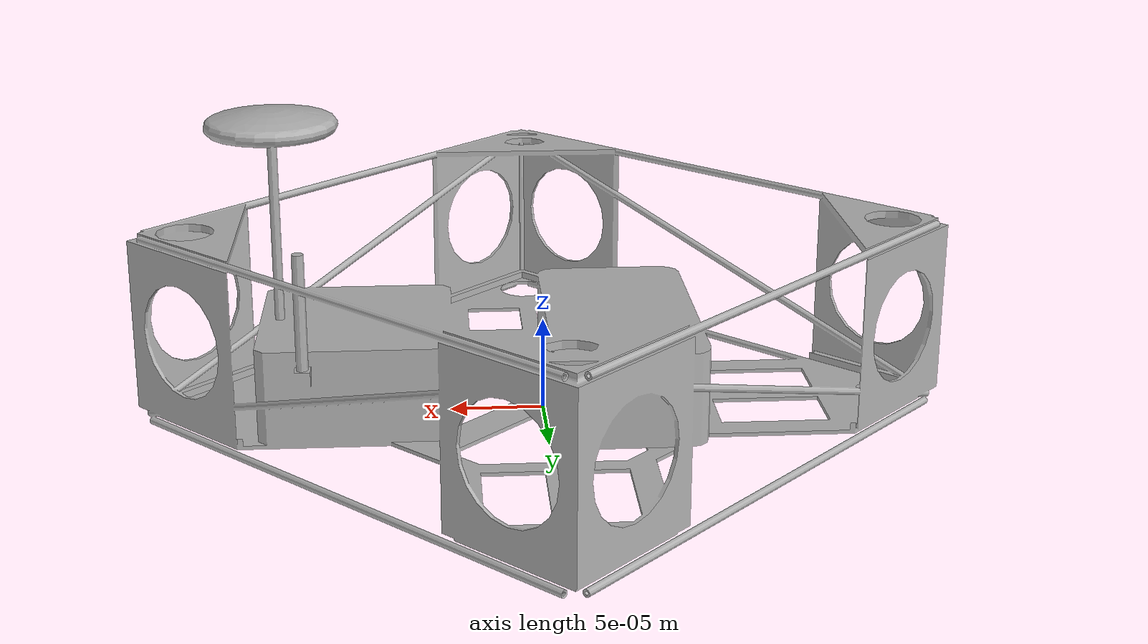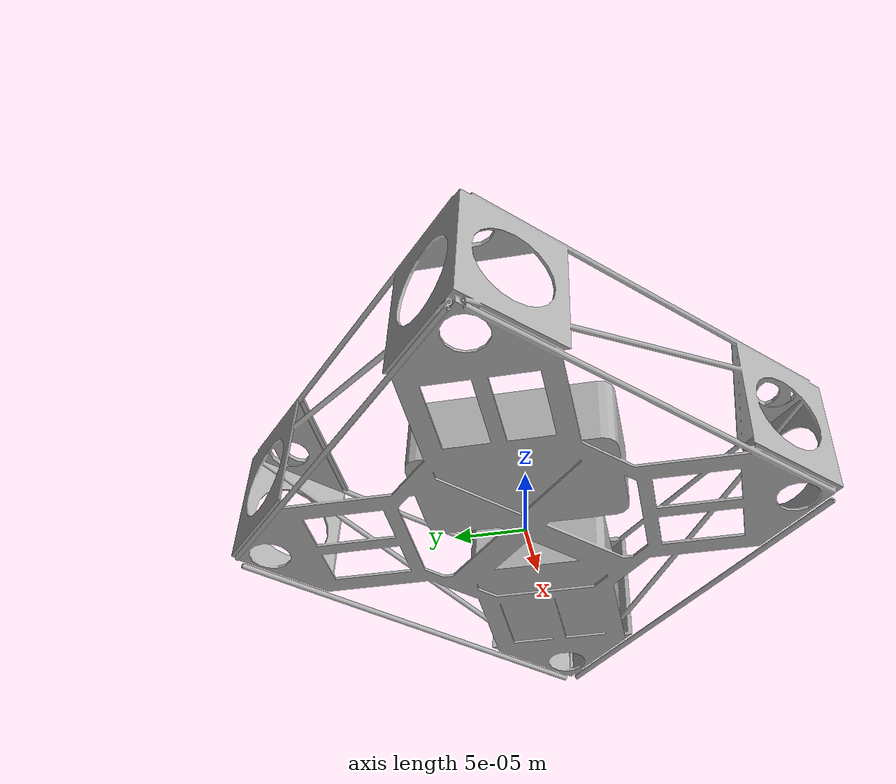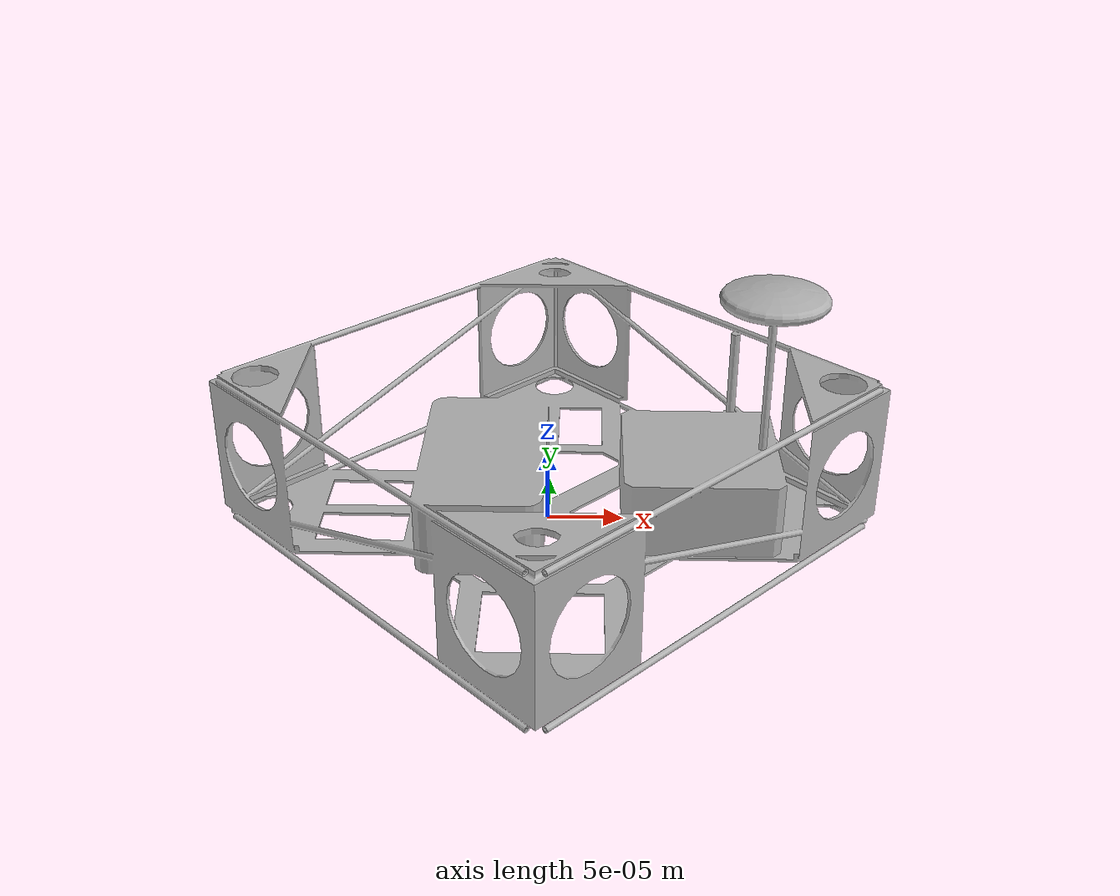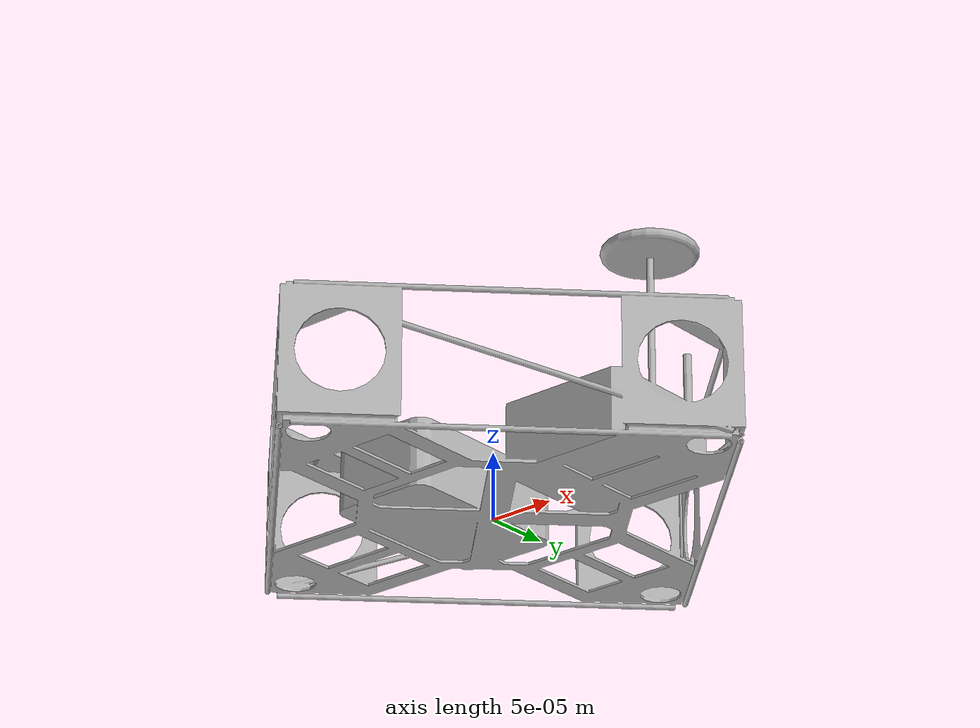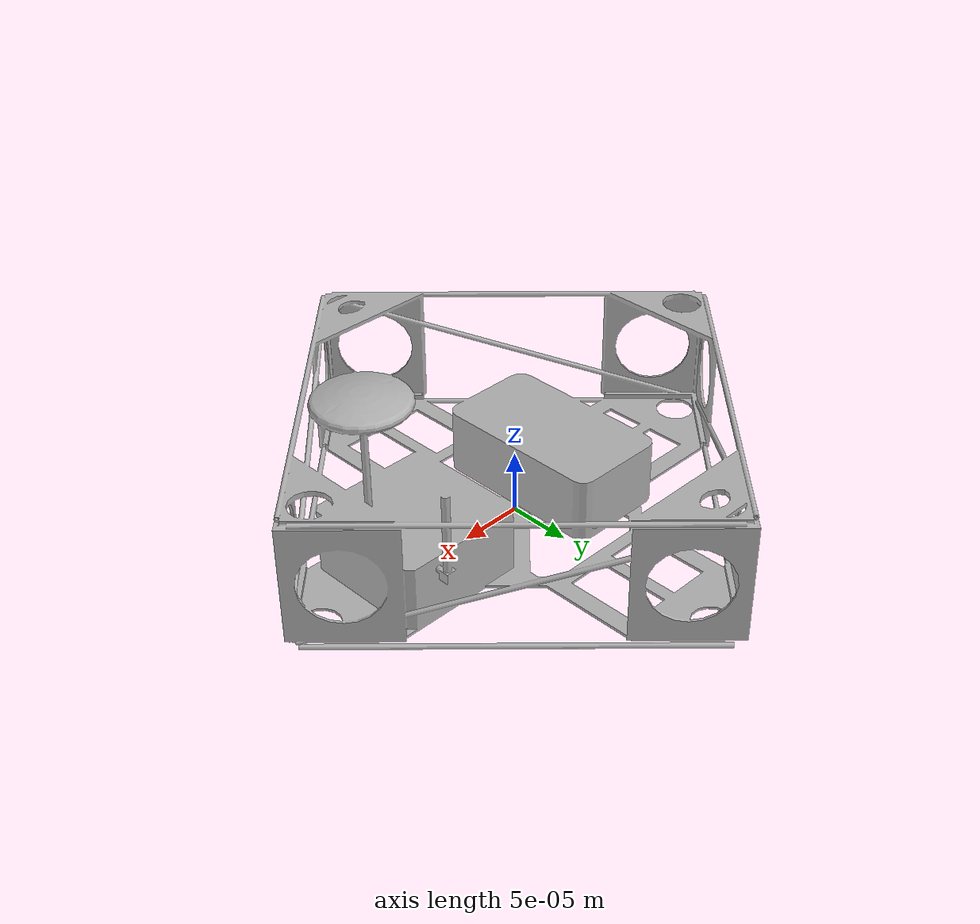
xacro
<?xml version="1.0" ?>
<robot name="NavigatorModule-Export" xmlns:xacro="http://www.ros.org/wiki/xacro">

<xacro:include filename="$(find NavigatorModule-Export_description)/urdf/materials.xacro" />
<xacro:include filename="$(find NavigatorModule-Export_description)/urdf/NavigatorModule-Export.trans" />
<xacro:include filename="$(find NavigatorModule-Export_description)/urdf/NavigatorModule-Export.gazebo" />
<link name="base_link">
  <inertial>
    <origin xyz="0.023872244589948865 -0.0009500409901555752 0.03522161274068737" rpy="0 0 0"/>
    <mass value="10.315469377399216"/>
    <inertia ixx="0.046069" iyy="0.083006" izz="0.110133" ixy="-0.001353" iyz="-0.000136" ixz="-0.003406"/>
  </inertial>
  <visual>
    <origin xyz="0 0 0" rpy="0 0 0"/>
    <geometry>
      <mesh filename="package://NavigatorModule-Export_description/meshes/base_link.stl" scale="0.001 0.001 0.001"/>
    </geometry>
    <material name="silver"/>
  </visual>
  <collision>
    <origin xyz="0 0 0" rpy="0 0 0"/>
    <geometry>
      <mesh filename="package://NavigatorModule-Export_description/meshes/base_link.stl" scale="0.001 0.001 0.001"/>
    </geometry>
  </collision>
</link>

</robot>

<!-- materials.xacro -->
<robot name="NavigatorModule-Export" xmlns:xacro="http://www.ros.org/wiki/xacro" >

<material name="silver">
  <color rgba="0.700 0.700 0.700 1.000"/>
</material>

</robot>

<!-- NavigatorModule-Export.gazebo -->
<robot name="NavigatorModule-Export" xmlns:xacro="http://www.ros.org/wiki/xacro" >

<xacro:property name="body_color" value="Gazebo/Silver" />

<gazebo>
  <plugin name="control" filename="libgazebo_ros_control.so"/>
</gazebo>
<gazebo reference="base_link">
  <material>${body_color}</material>
  <mu1>0.2</mu1>
  <mu2>0.2</mu2>
  <selfCollide>true</selfCollide>
  <gravity>true</gravity>
</gazebo>

</robot>
